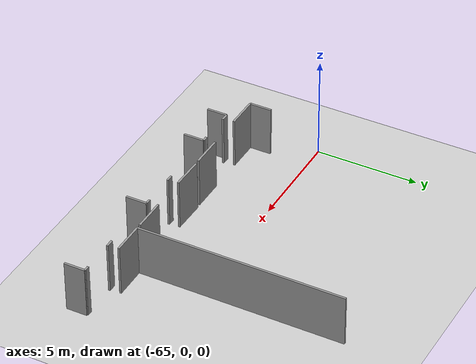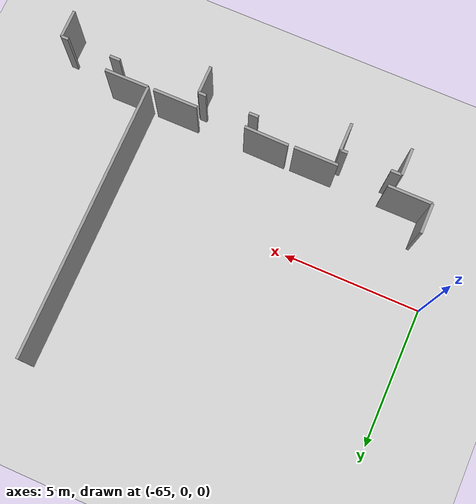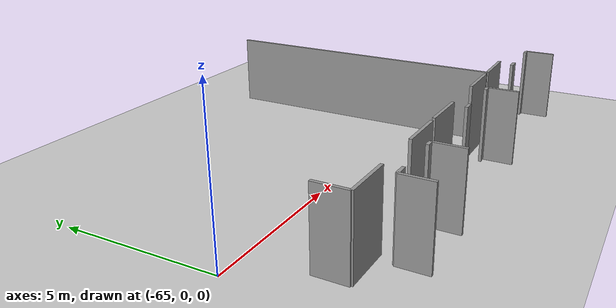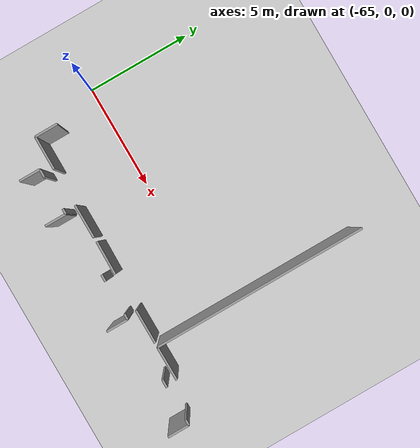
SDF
<sdf version="1.6">
 <world name="default">
  <model name="ground_plane">
   <static>1</static>
   <link name="link">
    <collision name="collision">
     <geometry><plane><normal>0 0 1</normal><size>100 100</size></plane></geometry>
     <surface><friction><ode><mu>100</mu><mu2>50</mu2></ode></friction></surface>
    </collision>
    <visual name="visual">
     <cast_shadows>0</cast_shadows>
     <geometry><plane><normal>0 0 1</normal><size>100 100</size></plane></geometry>
     <material>
      <script><uri>file://media/materials/scripts/gazebo.material</uri><name>Gazebo/Grey</name></script>
     </material>
    </visual>
   </link>
  </model>
  <model name="50055641">
   <static>1</static>
   <link name="Wall_6">
    <collision name="Wall_6_Collision">
     <geometry><box><size>1.07923167744 0.1 2.5</size></box></geometry>
     <pose>0.539615838718 0 1.25 0 0 0</pose>
    </collision>
    <visual name="Wall_6_Visual">
     <pose>0.539615838718 0 1.25 0 0 0</pose>
     <geometry><box><size>1.07923167744 0.1 2.5</size></box></geometry>
     <material>
      <script><uri>file://media/materials/scripts/gazebo.material</uri><name>Gazebo/Grey</name></script>
      <ambient>1 1 1 1</ambient>
     </material>
    </visual>
    <pose>5.37724231614 -21.7275831863 0 0 0 1.57079632679</pose>
   </link>
   <link name="Wall_11">
    <collision name="Wall_11_Collision">
     <geometry><box><size>1.5776511064 0.1 2.5</size></box></geometry>
     <pose>0.7888255532 0 1.25 0 0 0</pose>
    </collision>
    <visual name="Wall_11_Visual">
     <pose>0.7888255532 0 1.25 0 0 0</pose>
     <geometry><box><size>1.5776511064 0.1 2.5</size></box></geometry>
     <material>
      <script><uri>file://media/materials/scripts/gazebo.material</uri><name>Gazebo/Grey</name></script>
      <ambient>1 1 1 1</ambient>
     </material>
    </visual>
    <pose>10.3104013 -21.7329152332 0 0 0 3.14159265359</pose>
   </link>
   <link name="Wall_12">
    <collision name="Wall_12_Collision">
     <geometry><box><size>1.58578509447 0.1 2.5</size></box></geometry>
     <pose>0.792892547236 0 1.25 0 0 0</pose>
    </collision>
    <visual name="Wall_12_Visual">
     <pose>0.792892547236 0 1.25 0 0 0</pose>
     <geometry><box><size>1.58578509447 0.1 2.5</size></box></geometry>
     <material>
      <script><uri>file://media/materials/scripts/gazebo.material</uri><name>Gazebo/Grey</name></script>
      <ambient>1 1 1 1</ambient>
     </material>
    </visual>
    <pose>6.96301844634 -21.7329152332 0 0 0 3.13823024532</pose>
   </link>
   <link name="Wall_14">
    <collision name="Wall_14_Collision">
     <geometry><box><size>0.993411113509 0.1 2.5</size></box></geometry>
     <pose>0.496705556755 0 1.25 0 0 0</pose>
    </collision>
    <visual name="Wall_14_Visual">
     <pose>0.496705556755 0 1.25 0 0 0</pose>
     <geometry><box><size>0.993411113509 0.1 2.5</size></box></geometry>
     <material>
      <script><uri>file://media/materials/scripts/gazebo.material</uri><name>Gazebo/Grey</name></script>
      <ambient>1 1 1 1</ambient>
     </material>
    </visual>
    <pose>6.66924805444 -23.2500095215 0 0 0 1.57079632679</pose>
   </link>
   <link name="Wall_15">
    <collision name="Wall_15_Collision">
     <geometry><box><size>0.384161281723 0.1 2.5</size></box></geometry>
     <pose>0.192080640861 0 1.25 0 0 0</pose>
    </collision>
    <visual name="Wall_15_Visual">
     <pose>0.192080640861 0 1.25 0 0 0</pose>
     <geometry><box><size>0.384161281723 0.1 2.5</size></box></geometry>
     <material>
      <script><uri>file://media/materials/scripts/gazebo.material</uri><name>Gazebo/Grey</name></script>
      <ambient>1 1 1 1</ambient>
     </material>
    </visual>
    <pose>6.66924805444 -22.256598408 0 0 0 0.0</pose>
   </link>
   <link name="Wall_16">
    <collision name="Wall_16_Collision">
     <geometry><box><size>0.259239040739 0.1 2.5</size></box></geometry>
     <pose>0.12961952037 0 1.25 0 0 0</pose>
    </collision>
    <visual name="Wall_16_Visual">
     <pose>0.12961952037 0 1.25 0 0 0</pose>
     <geometry><box><size>0.259239040739 0.1 2.5</size></box></geometry>
     <material>
      <script><uri>file://media/materials/scripts/gazebo.material</uri><name>Gazebo/Grey</name></script>
      <ambient>1 1 1 1</ambient>
     </material>
    </visual>
    <pose>8.59868730084 -22.256598408 0 0 0 0.0</pose>
   </link>
   <link name="Wall_17">
    <collision name="Wall_17_Collision">
     <geometry><box><size>1.01258109155 0.1 2.5</size></box></geometry>
     <pose>0.506290545773 0 1.25 0 0 0</pose>
    </collision>
    <visual name="Wall_17_Visual">
     <pose>0.506290545773 0 1.25 0 0 0</pose>
     <geometry><box><size>1.01258109155 0.1 2.5</size></box></geometry>
     <material>
      <script><uri>file://media/materials/scripts/gazebo.material</uri><name>Gazebo/Grey</name></script>
      <ambient>1 1 1 1</ambient>
     </material>
    </visual>
    <pose>8.85792634158 -22.256598408 0 0 0 -1.57079632679</pose>
   </link>
   <link name="Wall_20">
    <collision name="Wall_20_Collision">
     <geometry><box><size>0.345567418655 0.1 2.5</size></box></geometry>
     <pose>0.172783709327 0 1.25 0 0 0</pose>
    </collision>
    <visual name="Wall_20_Visual">
     <pose>0.172783709327 0 1.25 0 0 0</pose>
     <geometry><box><size>0.345567418655 0.1 2.5</size></box></geometry>
     <material>
      <script><uri>file://media/materials/scripts/gazebo.material</uri><name>Gazebo/Grey</name></script>
      <ambient>1 1 1 1</ambient>
     </material>
    </visual>
    <pose>11.8337163097 -22.2419987559 0 0 0 0.0</pose>
   </link>
   <link name="Wall_21">
    <collision name="Wall_21_Collision">
     <geometry><box><size>0.268760553009 0.1 2.5</size></box></geometry>
     <pose>0.134380276505 0 1.25 0 0 0</pose>
    </collision>
    <visual name="Wall_21_Visual">
     <pose>0.134380276505 0 1.25 0 0 0</pose>
     <geometry><box><size>0.268760553009 0.1 2.5</size></box></geometry>
     <material>
      <script><uri>file://media/materials/scripts/gazebo.material</uri><name>Gazebo/Grey</name></script>
      <ambient>1 1 1 1</ambient>
     </material>
    </visual>
    <pose>13.7632825096 -22.2419987559 0 0 0 0.0</pose>
   </link>
   <link name="Wall_22">
    <collision name="Wall_22_Collision">
     <geometry><box><size>1.01765923142 0.1 2.5</size></box></geometry>
     <pose>0.508829615712 0 1.25 0 0 0</pose>
    </collision>
    <visual name="Wall_22_Visual">
     <pose>0.508829615712 0 1.25 0 0 0</pose>
     <geometry><box><size>1.01765923142 0.1 2.5</size></box></geometry>
     <material>
      <script><uri>file://media/materials/scripts/gazebo.material</uri><name>Gazebo/Grey</name></script>
      <ambient>1 1 1 1</ambient>
     </material>
    </visual>
    <pose>14.0320430626 -22.2419987559 0 0 0 -1.57079632679</pose>
   </link>
   <link name="Wall_25">
    <collision name="Wall_25_Collision">
     <geometry><box><size>0.383907374729 0.1 2.5</size></box></geometry>
     <pose>0.191953687364 0 1.25 0 0 0</pose>
    </collision>
    <visual name="Wall_25_Visual">
     <pose>0.191953687364 0 1.25 0 0 0</pose>
     <geometry><box><size>0.383907374729 0.1 2.5</size></box></geometry>
     <material>
      <script><uri>file://media/materials/scripts/gazebo.material</uri><name>Gazebo/Grey</name></script>
      <ambient>1 1 1 1</ambient>
     </material>
    </visual>
    <pose>16.9791415405 -22.2516472216 0 0 0 0.0</pose>
   </link>
   <link name="Wall_26">
    <collision name="Wall_26_Collision">
     <geometry><box><size>0.264824994604 0.1 2.5</size></box></geometry>
     <pose>0.132412497302 0 1.25 0 0 0</pose>
    </collision>
    <visual name="Wall_26_Visual">
     <pose>0.132412497302 0 1.25 0 0 0</pose>
     <geometry><box><size>0.264824994604 0.1 2.5</size></box></geometry>
     <material>
      <script><uri>file://media/materials/scripts/gazebo.material</uri><name>Gazebo/Grey</name></script>
      <ambient>1 1 1 1</ambient>
     </material>
    </visual>
    <pose>18.9360027422 -22.2516472216 0 0 0 0.0</pose>
   </link>
   <link name="Wall_27">
    <collision name="Wall_27_Collision">
     <geometry><box><size>1.01423148701 0.1 2.5</size></box></geometry>
     <pose>0.507115743503 0 1.25 0 0 0</pose>
    </collision>
    <visual name="Wall_27_Visual">
     <pose>0.507115743503 0 1.25 0 0 0</pose>
     <geometry><box><size>1.01423148701 0.1 2.5</size></box></geometry>
     <material>
      <script><uri>file://media/materials/scripts/gazebo.material</uri><name>Gazebo/Grey</name></script>
      <ambient>1 1 1 1</ambient>
     </material>
    </visual>
    <pose>19.2008277368 -22.2516472216 0 0 0 -1.57079632679</pose>
   </link>
   <link name="Wall_73">
    <collision name="Wall_73_Collision">
     <geometry><box><size>1.60329571278 0.1 2.5</size></box></geometry>
     <pose>0.80164785639 0 1.25 0 0 0</pose>
    </collision>
    <visual name="Wall_73_Visual">
     <pose>0.80164785639 0 1.25 0 0 0</pose>
     <geometry><box><size>1.60329571278 0.1 2.5</size></box></geometry>
     <material>
      <script><uri>file://media/materials/scripts/gazebo.material</uri><name>Gazebo/Grey</name></script>
      <ambient>1 1 1 1</ambient>
     </material>
    </visual>
    <pose>15.4807094161 -21.7369777451 0 0 0 3.14159265359</pose>
   </link>
   <link name="Wall_74">
    <collision name="Wall_74_Collision">
     <geometry><box><size>1.59701297173 0.1 2.5</size></box></geometry>
     <pose>0.798506485864 0 1.25 0 0 0</pose>
    </collision>
    <visual name="Wall_74_Visual">
     <pose>0.798506485864 0 1.25 0 0 0</pose>
     <geometry><box><size>1.59701297173 0.1 2.5</size></box></geometry>
     <material>
      <script><uri>file://media/materials/scripts/gazebo.material</uri><name>Gazebo/Grey</name></script>
      <ambient>1 1 1 1</ambient>
     </material>
    </visual>
    <pose>12.1198694918 -21.7369777451 0 0 0 3.12609063583</pose>
   </link>
   <link name="Wall_75">
    <collision name="Wall_75_Collision">
     <geometry><box><size>10.0304688393 0.1 2.5</size></box></geometry>
     <pose>5.01523441963 0 1.25 0 0 0</pose>
    </collision>
    <visual name="Wall_75_Visual">
     <pose>5.01523441963 0 1.25 0 0 0</pose>
     <geometry><box><size>10.0304688393 0.1 2.5</size></box></geometry>
     <material>
      <script><uri>file://media/materials/scripts/gazebo.material</uri><name>Gazebo/Grey</name></script>
      <ambient>1 1 1 1</ambient>
     </material>
    </visual>
    <pose>15.6908174536 -21.740278536 0 0 0 1.57079632679</pose>
   </link>
   <link name="Wall_80">
    <collision name="Wall_80_Collision">
     <geometry><box><size>1.60445519049 0.1 2.5</size></box></geometry>
     <pose>0.802227595245 0 1.25 0 0 0</pose>
    </collision>
    <visual name="Wall_80_Visual">
     <pose>0.802227595245 0 1.25 0 0 0</pose>
     <geometry><box><size>1.60445519049 0.1 2.5</size></box></geometry>
     <material>
      <script><uri>file://media/materials/scripts/gazebo.material</uri><name>Gazebo/Grey</name></script>
      <ambient>1 1 1 1</ambient>
     </material>
    </visual>
    <pose>17.2952557478 -21.7329152332 0 0 0 -3.13700335205</pose>
   </link>
   <pose>-69.25 18.7344164583 0 0 0 0</pose>
  </model>
 </world>
</sdf>
